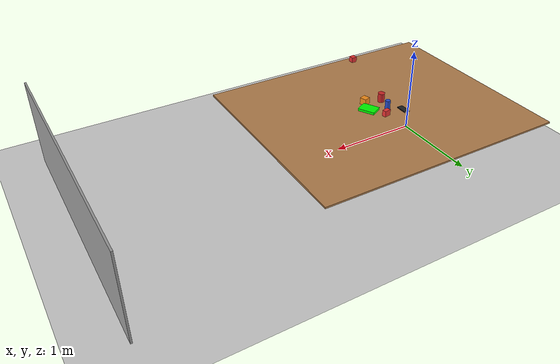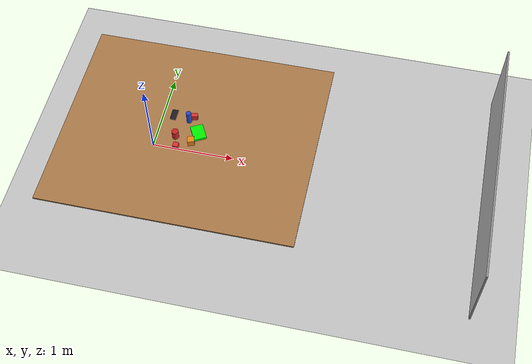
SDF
<?xml version="1.0"?>
<sdf version="1.6">
  <world name="ur30_vision_world">

    <!-- Updated physics for maximum stability -->
    <physics name="default_physics" default="0" type="ode">
      <max_step_size>0.001</max_step_size>
      <real_time_factor>1.0</real_time_factor>
      <real_time_update_rate>1000</real_time_update_rate>
      <ode>
        <solver>
          <type>world</type>
          <iters>150</iters>
          <sor>1.3</sor>
        </solver>
        <constraints>
          <cfm>0.001</cfm>
          <erp>0.2</erp>
          <contact_max_correcting_vel>1.0</contact_max_correcting_vel>
          <contact_surface_layer>0.001</contact_surface_layer>
        </constraints>
      </ode>
    </physics>

    <!-- Lighting optimized for computer vision -->
    <light name="sun" type="directional">
      <cast_shadows>true</cast_shadows>
      <pose>0 0 10 0 0 0</pose>
      <diffuse>0.8 0.8 0.8 1</diffuse>
      <specular>0.2 0.2 0.2 1</specular>
      <attenuation>
        <range>1000</range>
        <constant>0.9</constant>
        <linear>0.01</linear>
        <quadratic>0.001</quadratic>
      </attenuation>
      <direction>-0.5 0.1 -0.9</direction>
    </light>

    <!-- Additional lighting for consistent vision -->
    <light name="ambient_light" type="ambient">
      <color>0.4 0.4 0.4 1</color>
    </light>

    <!-- Ground plane -->
    <include>
      <uri>model://ground_plane</uri>
    </include>

    <!-- Work table -->
    <model name="work_table">
      <pose>0.5 0 0.4 0 0 0</pose>
      <static>true</static>
      <link name="table_link">
        <visual name="table_visual">
          <geometry>
            <box>
              <size>3.0 2.5 0.02</size>
            </box>
          </geometry>
          <material>
            <script>
              <name>Gazebo/Wood</name>
            </script>
          </material>
        </visual>
        <collision name="table_collision">
          <geometry>
            <box>
              <size>3.0 2.5 0.02</size>
            </box>
          </geometry>
          <surface>
            <friction>
              <ode>
                <mu>0.8</mu>
                <mu2>0.8</mu2>
              </ode>
            </friction>
          </surface>
        </collision>
        <inertial>
          <mass>50</mass>
          <inertia>
            <ixx>1</ixx>
            <ixy>0</ixy>
            <ixz>0</ixz>
            <iyy>1</iyy>
            <iyz>0</iyz>
            <izz>1</izz>
          </inertia>
        </inertial>
      </link>
    </model>

    <!-- Test objects for VLM detection -->

    <!-- Water bottle -->
    <model name="water_bottle">
      <pose>0.45 0.15 0.485 0 0 0</pose>
      <static>false</static>
      <link name="bottle_link">
        <visual name="bottle_visual">
          <geometry>
            <cylinder>
              <radius>0.03</radius>
              <length>0.17</length>
            </cylinder>
          </geometry>
          <material>
            <script>
              <name>Gazebo/Blue</name>
            </script>
          </material>
        </visual>
        <collision name="bottle_collision">
          <geometry>
            <cylinder>
              <radius>0.03</radius>
              <length>0.17</length>
            </cylinder>
          </geometry>
        </collision>
        <inertial>
          <mass>0.5</mass>
          <inertia>
            <ixx>0.001</ixx>
            <ixy>0</ixy>
            <ixz>0</ixz>
            <iyy>0.001</iyy>
            <iyz>0</iyz>
            <izz>0.0001</izz>
          </inertia>
        </inertial>
      </link>
    </model>

    <!-- Coffee cup -->
    <model name="coffee_cup">
      <pose>0.35 -0.1 0.46 0 0 0</pose>
      <static>false</static>
      <link name="cup_link">
        <visual name="cup_visual">
          <geometry>
            <cylinder>
              <radius>0.04</radius>
              <length>0.12</length>
            </cylinder>
          </geometry>
          <material>
            <script>
              <name>Gazebo/Red</name>
            </script>
          </material>
        </visual>
        <collision name="cup_collision">
          <geometry>
            <cylinder>
              <radius>0.04</radius>
              <length>0.12</length>
            </cylinder>
          </geometry>
        </collision>
        <inertial>
          <mass>0.3</mass>
          <inertia>
            <ixx>0.001</ixx>
            <ixy>0</ixy>
            <ixz>0</ixz>
            <iyy>0.001</iyy>
            <iyz>0</iyz>
            <izz>0.0001</izz>
          </inertia>
        </inertial>
      </link>
    </model>

    <!-- Book -->
    <model name="book">
      <pose>0.6 0.0 0.425 0 0 0.5</pose>
      <static>false</static>
      <link name="book_link">
        <visual name="book_visual">
          <geometry>
            <box>
              <size>0.15 0.20 0.03</size>
            </box>
          </geometry>
          <material>
            <ambient>0 1 0 1</ambient>
            <diffuse>0 1 0 1</diffuse>
            <specular>0.1 0.1 0.1 1</specular>
            <emissive>0 0 0 0</emissive>
          </material>
        </visual>
        <collision name="book_collision">
          <geometry>
            <box>
              <size>0.15 0.20 0.03</size>
            </box>
          </geometry>
        </collision>
        <inertial>
          <mass>0.2</mass>
          <inertia>
            <ixx>0.001</ixx>
            <ixy>0</ixy>
            <ixz>0</ixz>
            <iyy>0.001</iyy>
            <iyz>0</iyz>
            <izz>0.001</izz>
          </inertia>
        </inertial>
      </link>
    </model>

    <!-- Phone -->
    <model name="phone">
      <pose>0.25 0.2 0.42 0 0 0</pose>
      <static>false</static>
      <link name="phone_link">
        <visual name="phone_visual">
          <geometry>
            <box>
              <size>0.07 0.14 0.01</size>
            </box>
          </geometry>
          <material>
            <script>
              <name>Gazebo/Black</name>
            </script>
          </material>
        </visual>
        <collision name="phone_collision">
          <geometry>
            <box>
              <size>0.07 0.14 0.01</size>
            </box>
          </geometry>
        </collision>
        <inertial>
          <mass>0.15</mass>
          <inertia>
            <ixx>0.0001</ixx>
            <ixy>0</ixy>
            <ixz>0</ixz>
            <iyy>0.0001</iyy>
            <iyz>0</iyz>
            <izz>0.0001</izz>
          </inertia>
        </inertial>
      </link>
    </model>

    <!-- Small box -->
    <model name="small_box">
      <pose>0.55 -0.15 0.445 0 0 0.3</pose>
      <static>false</static>
      <link name="box_link">
        <visual name="box_visual">
          <geometry>
            <box>
              <size>0.08 0.08 0.09</size>
            </box>
          </geometry>
          <material>
            <script>
              <name>Gazebo/Orange</name>
            </script>
          </material>
        </visual>
        <collision name="box_collision">
          <geometry>
            <box>
              <size>0.08 0.08 0.09</size>
            </box>
          </geometry>
          <surface>
            <friction>
              <ode>
                <mu>0.8</mu>
                <mu2>0.8</mu2>
              </ode>
            </friction>
          </surface>
        </collision>
        <inertial>
          <mass>0.2</mass>
          <inertia>
            <ixx>0.0002</ixx>
            <ixy>0</ixy>
            <ixz>0</ixz>
            <iyy>0.0002</iyy>
            <iyz>0</iyz>
            <izz>0.0002</izz>
          </inertia>
        </inertial>
      </link>
    </model>

    <!-- RED CUBE - Primary target for VLM testing -->
    <model name="red_cube">
      <pose>0.5 -0.5 0.83 0 0 0</pose> <!-- On table, aligned with robot Y position, in front -->
      <static>false</static>
      <link name="cube_link">
        <visual name="cube_visual">
          <geometry>
            <box>
              <size>0.06 0.06 0.06</size> <!-- 6cm cube - good size for grasping -->
            </box>
          </geometry>
          <material>
            <script>
              <n>Gazebo/Red</n>
            </script>
            <!-- Enhanced red color for better VLM detection -->
            <ambient>0.8 0.1 0.1 1</ambient>
            <diffuse>0.9 0.2 0.2 1</diffuse>
            <specular>0.1 0.1 0.1 1</specular>
          </material>
        </visual>
        <collision name="cube_collision">
          <geometry>
            <box>
              <size>0.06 0.06 0.06</size>
            </box>
          </geometry>
          <surface>
            <friction>
              <ode>
                <mu>0.9</mu>
                <mu2>0.9</mu2>
              </ode>
            </friction>
            <contact>
              <ode>
                <kp>50000</kp>
                <kd>10</kd>
              </ode>
            </contact>
          </surface>
        </collision>
        <inertial>
          <mass>0.15</mass> <!-- Reasonable mass for grasping -->
          <inertia>
            <ixx>0.00015</ixx>
            <ixy>0</ixy>
            <ixz>0</ixz>
            <iyy>0.00015</iyy>
            <iyz>0</iyz>
            <izz>0.00015</izz>
          </inertia>
        </inertial>
      </link>
    </model>

    <!-- RED BOX - Alternative target for testing -->
    <model name="red_box">
      <pose>0.5 0.2 0.45 0 0 0.2</pose> <!-- Slightly rotated for variety -->
      <static>false</static>
      <link name="red_box_link">
        <visual name="red_box_visual">
          <geometry>
            <box>
              <size>0.08 0.05 0.07</size> <!-- Rectangular box -->
            </box>
          </geometry>
          <material>
            <script>
              <n>Gazebo/Red</n>
            </script>
            <!-- Enhanced red color for better VLM detection -->
            <ambient>0.8 0.1 0.1 1</ambient>
            <diffuse>0.9 0.2 0.2 1</diffuse>
            <specular>0.1 0.1 0.1 1</specular>
          </material>
        </visual>
        <collision name="red_box_collision">
          <geometry>
            <box>
              <size>0.08 0.05 0.07</size>
            </box>
          </geometry>
          <surface>
            <friction>
              <ode>
                <mu>0.8</mu>
                <mu2>0.8</mu2>
              </ode>
            </friction>
          </surface>
        </collision>
        <inertial>
          <mass>0.12</mass>
          <inertia>
            <ixx>0.0001</ixx>
            <ixy>0</ixy>
            <ixz>0</ixz>
            <iyy>0.0001</iyy>
            <iyz>0</iyz>
            <izz>0.0001</izz>
          </inertia>
        </inertial>
      </link>
    </model>

    <!-- Background objects for visual complexity -->
    <model name="background_wall">
      <pose>4.0 0 0.5 0 0 0</pose>
      <static>true</static>
      <link name="wall_link">
        <visual name="wall_visual">
          <geometry>
            <box>
              <size>0.02 3.0 1.0</size>
            </box>
          </geometry>
          <material>
            <script>
              <name>Gazebo/Grey</name>
            </script>
          </material>
        </visual>
        <collision name="wall_collision">
          <geometry>
            <box>
              <size>0.02 3.0 1.0</size>
            </box>
          </geometry>
        </collision>
      </link>
    </model>

    <!-- GUI settings -->
    <gui fullscreen='0'>
      <camera name='user_camera'>
        <pose>1.5 1.5 1.2 0 0.4 -2.4</pose>
        <view_controller>orbit</view_controller>
      </camera>
    </gui>

  </world>
</sdf>
